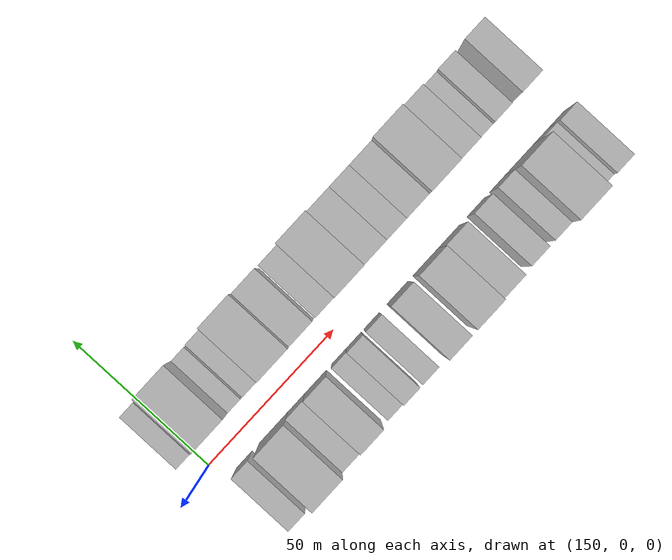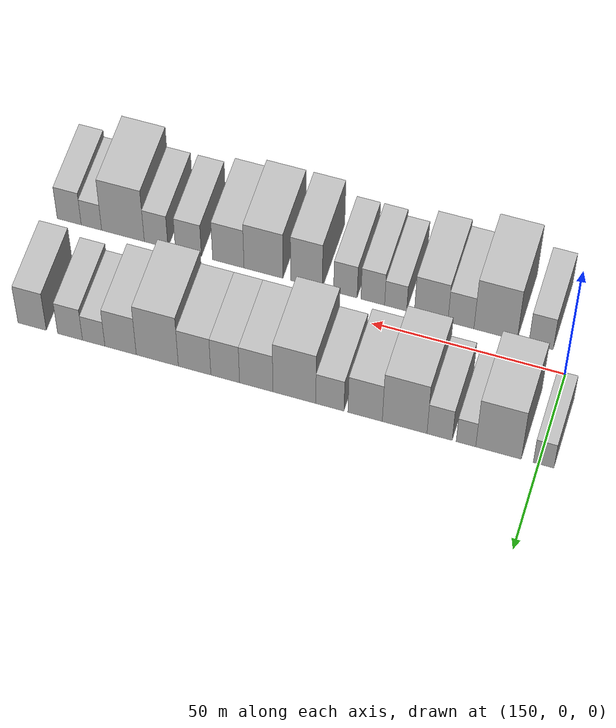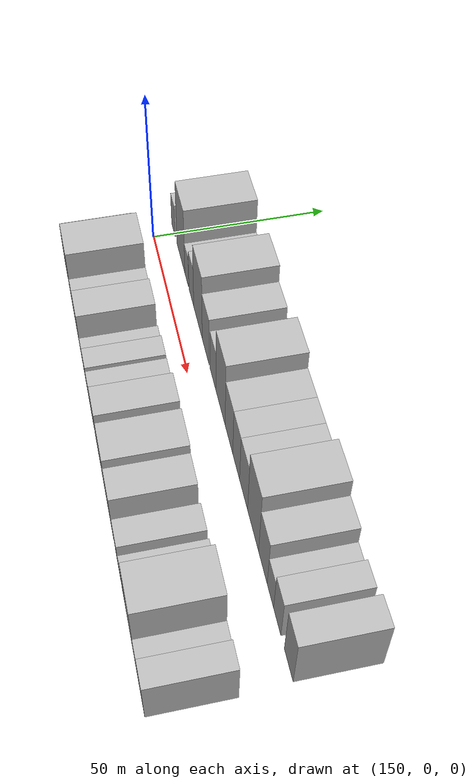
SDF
<sdf version="1.6">
 <world name="default">
  <model name="building_14">
   <static>1</static>
   <pose>148.7279 16.0000 0 0.000000 0.000000 1.570796</pose>
   <link name="link">
    <pose>0 0 6.00 0 0 0</pose>
    <collision name="collision"><geometry><box><size>20.0000 5.2347 12.0000</size></box></geometry></collision>
    <visual name="visual">
     <cast_shadows>0</cast_shadows>
     <geometry><box><size>20.0000 5.2347 12.0000</size></box></geometry>
     <material>
      <script>
       <uri>model://HANNAS_wall/materials/scripts</uri>
       <uri>model://HANNAS_wall/materials/textures</uri>
       <name>vrc/HANNAS_wall</name>
      </script>
     </material>
    </visual>
   </link>
  </model>
  <model name="building_15">
   <static>1</static>
   <pose>160.1381 16.0000 0 0.000000 0.000000 1.570796</pose>
   <link name="link">
    <pose>0 0 12.00 0 0 0</pose>
    <collision name="collision"><geometry><box><size>20.0000 11.5856 24.0000</size></box></geometry></collision>
    <visual name="visual">
     <cast_shadows>0</cast_shadows>
     <geometry><box><size>20.0000 11.5856 24.0000</size></box></geometry>
     <material>
      <script>
       <uri>model://HANNAS_wall/materials/scripts</uri>
       <uri>model://HANNAS_wall/materials/textures</uri>
       <name>vrc/HANNAS_wall</name>
      </script>
     </material>
    </visual>
   </link>
  </model>
  <model name="building_16">
   <static>1</static>
   <pose>168.4143 16.0000 0 0.000000 0.000000 1.570796</pose>
   <link name="link">
    <pose>0 0 6.00 0 0 0</pose>
    <collision name="collision"><geometry><box><size>20.0000 4.9667 12.0000</size></box></geometry></collision>
    <visual name="visual">
     <cast_shadows>0</cast_shadows>
     <geometry><box><size>20.0000 4.9667 12.0000</size></box></geometry>
     <material>
      <script>
       <uri>model://HANNAS_wall/materials/scripts</uri>
       <uri>model://HANNAS_wall/materials/textures</uri>
       <name>vrc/HANNAS_wall</name>
      </script>
     </material>
    </visual>
   </link>
  </model>
  <model name="building_17">
   <static>1</static>
   <pose>175.1251 16.0000 0 0.000000 0.000000 1.570796</pose>
   <link name="link">
    <pose>0 0 7.50 0 0 0</pose>
    <collision name="collision"><geometry><box><size>20.0000 6.4549 15.0000</size></box></geometry></collision>
    <visual name="visual">
     <cast_shadows>0</cast_shadows>
     <geometry><box><size>20.0000 6.4549 15.0000</size></box></geometry>
     <material>
      <script>
       <uri>model://HANNAS_wall/materials/scripts</uri>
       <uri>model://HANNAS_wall/materials/textures</uri>
       <name>vrc/HANNAS_wall</name>
      </script>
     </material>
    </visual>
   </link>
  </model>
  <model name="building_18">
   <static>1</static>
   <pose>184.0758 16.0000 0 0.000000 0.000000 1.570796</pose>
   <link name="link">
    <pose>0 0 12.00 0 0 0</pose>
    <collision name="collision"><geometry><box><size>20.0000 11.4465 24.0000</size></box></geometry></collision>
    <visual name="visual">
     <cast_shadows>0</cast_shadows>
     <geometry><box><size>20.0000 11.4465 24.0000</size></box></geometry>
     <material>
      <script>
       <uri>model://HANNAS_wall/materials/scripts</uri>
       <uri>model://HANNAS_wall/materials/textures</uri>
       <name>vrc/HANNAS_wall</name>
      </script>
     </material>
    </visual>
   </link>
  </model>
  <model name="building_19">
   <static>1</static>
   <pose>194.2236 16.0000 0 0.000000 0.000000 1.570796</pose>
   <link name="link">
    <pose>0 0 9.00 0 0 0</pose>
    <collision name="collision"><geometry><box><size>20.0000 8.8491 18.0000</size></box></geometry></collision>
    <visual name="visual">
     <cast_shadows>0</cast_shadows>
     <geometry><box><size>20.0000 8.8491 18.0000</size></box></geometry>
     <material>
      <script>
       <uri>model://HANNAS_wall/materials/scripts</uri>
       <uri>model://HANNAS_wall/materials/textures</uri>
       <name>vrc/HANNAS_wall</name>
      </script>
     </material>
    </visual>
   </link>
  </model>
  <model name="building_20">
   <static>1</static>
   <pose>203.2974 16.0000 0 0.000000 0.000000 1.570796</pose>
   <link name="link">
    <pose>0 0 7.50 0 0 0</pose>
    <collision name="collision"><geometry><box><size>20.0000 7.2986 15.0000</size></box></geometry></collision>
    <visual name="visual">
     <cast_shadows>0</cast_shadows>
     <geometry><box><size>20.0000 7.2986 15.0000</size></box></geometry>
     <material>
      <script>
       <uri>model://HANNAS_wall/materials/scripts</uri>
       <uri>model://HANNAS_wall/materials/textures</uri>
       <name>vrc/HANNAS_wall</name>
      </script>
     </material>
    </visual>
   </link>
  </model>
  <model name="building_21">
   <static>1</static>
   <pose>212.4936 16.0000 0 0.000000 0.000000 1.570796</pose>
   <link name="link">
    <pose>0 0 12.00 0 0 0</pose>
    <collision name="collision"><geometry><box><size>20.0000 11.0938 24.0000</size></box></geometry></collision>
    <visual name="visual">
     <cast_shadows>0</cast_shadows>
     <geometry><box><size>20.0000 11.0938 24.0000</size></box></geometry>
     <material>
      <script>
       <uri>model://HANNAS_wall/materials/scripts</uri>
       <uri>model://HANNAS_wall/materials/textures</uri>
       <name>vrc/HANNAS_wall</name>
      </script>
     </material>
    </visual>
   </link>
  </model>
  <model name="building_22">
   <static>1</static>
   <pose>222.3865 16.0000 0 0.000000 0.000000 1.570796</pose>
   <link name="link">
    <pose>0 0 9.00 0 0 0</pose>
    <collision name="collision"><geometry><box><size>20.0000 8.6919 18.0000</size></box></geometry></collision>
    <visual name="visual">
     <cast_shadows>0</cast_shadows>
     <geometry><box><size>20.0000 8.6919 18.0000</size></box></geometry>
     <material>
      <script>
       <uri>model://HANNAS_wall/materials/scripts</uri>
       <uri>model://HANNAS_wall/materials/textures</uri>
       <name>vrc/HANNAS_wall</name>
      </script>
     </material>
    </visual>
   </link>
  </model>
  <model name="building_23">
   <static>1</static>
   <pose>230.4803 16.0000 0 0.000000 0.000000 1.570796</pose>
   <link name="link">
    <pose>0 0 9.00 0 0 0</pose>
    <collision name="collision"><geometry><box><size>20.0000 7.4958 18.0000</size></box></geometry></collision>
    <visual name="visual">
     <cast_shadows>0</cast_shadows>
     <geometry><box><size>20.0000 7.4958 18.0000</size></box></geometry>
     <material>
      <script>
       <uri>model://HANNAS_wall/materials/scripts</uri>
       <uri>model://HANNAS_wall/materials/textures</uri>
       <name>vrc/HANNAS_wall</name>
      </script>
     </material>
    </visual>
   </link>
  </model>
  <model name="building_24">
   <static>1</static>
   <pose>238.4895 16.0000 0 0.000000 0.000000 1.570796</pose>
   <link name="link">
    <pose>0 0 9.00 0 0 0</pose>
    <collision name="collision"><geometry><box><size>20.0000 8.5227 18.0000</size></box></geometry></collision>
    <visual name="visual">
     <cast_shadows>0</cast_shadows>
     <geometry><box><size>20.0000 8.5227 18.0000</size></box></geometry>
     <material>
      <script>
       <uri>model://HANNAS_wall/materials/scripts</uri>
       <uri>model://HANNAS_wall/materials/textures</uri>
       <name>vrc/HANNAS_wall</name>
      </script>
     </material>
    </visual>
   </link>
  </model>
  <model name="building_25">
   <static>1</static>
   <pose>248.2883 16.0000 0 0.000000 0.000000 1.570796</pose>
   <link name="link">
    <pose>0 0 12.00 0 0 0</pose>
    <collision name="collision"><geometry><box><size>20.0000 11.0749 24.0000</size></box></geometry></collision>
    <visual name="visual">
     <cast_shadows>0</cast_shadows>
     <geometry><box><size>20.0000 11.0749 24.0000</size></box></geometry>
     <material>
      <script>
       <uri>model://HANNAS_wall/materials/scripts</uri>
       <uri>model://HANNAS_wall/materials/textures</uri>
       <name>vrc/HANNAS_wall</name>
      </script>
     </material>
    </visual>
   </link>
  </model>
  <model name="building_26">
   <static>1</static>
   <pose>257.9700 16.0000 0 0.000000 0.000000 1.570796</pose>
   <link name="link">
    <pose>0 0 9.00 0 0 0</pose>
    <collision name="collision"><geometry><box><size>20.0000 8.2885 18.0000</size></box></geometry></collision>
    <visual name="visual">
     <cast_shadows>0</cast_shadows>
     <geometry><box><size>20.0000 8.2885 18.0000</size></box></geometry>
     <material>
      <script>
       <uri>model://HANNAS_wall/materials/scripts</uri>
       <uri>model://HANNAS_wall/materials/textures</uri>
       <name>vrc/HANNAS_wall</name>
      </script>
     </material>
    </visual>
   </link>
  </model>
  <model name="building_27">
   <static>1</static>
   <pose>265.0842 16.0000 0 0.000000 0.000000 1.570796</pose>
   <link name="link">
    <pose>0 0 6.00 0 0 0</pose>
    <collision name="collision"><geometry><box><size>20.0000 5.9399 12.0000</size></box></geometry></collision>
    <visual name="visual">
     <cast_shadows>0</cast_shadows>
     <geometry><box><size>20.0000 5.9399 12.0000</size></box></geometry>
     <material>
      <script>
       <uri>model://HANNAS_wall/materials/scripts</uri>
       <uri>model://HANNAS_wall/materials/textures</uri>
       <name>vrc/HANNAS_wall</name>
      </script>
     </material>
    </visual>
   </link>
  </model>
  <model name="building_28">
   <static>1</static>
   <pose>271.3582 16.0000 0 0.000000 0.000000 1.570796</pose>
   <link name="link">
    <pose>0 0 7.50 0 0 0</pose>
    <collision name="collision"><geometry><box><size>20.0000 6.6079 15.0000</size></box></geometry></collision>
    <visual name="visual">
     <cast_shadows>0</cast_shadows>
     <geometry><box><size>20.0000 6.6079 15.0000</size></box></geometry>
     <material>
      <script>
       <uri>model://HANNAS_wall/materials/scripts</uri>
       <uri>model://HANNAS_wall/materials/textures</uri>
       <name>vrc/HANNAS_wall</name>
      </script>
     </material>
    </visual>
   </link>
  </model>
  <model name="building_29">
   <static>1</static>
   <pose>281.4448 16.0000 0 0.000000 0.000000 1.570796</pose>
   <link name="link">
    <pose>0 0 9.00 0 0 0</pose>
    <collision name="collision"><geometry><box><size>20.0000 7.5653 18.0000</size></box></geometry></collision>
    <visual name="visual">
     <cast_shadows>0</cast_shadows>
     <geometry><box><size>20.0000 7.5653 18.0000</size></box></geometry>
     <material>
      <script>
       <uri>model://HANNAS_wall/materials/scripts</uri>
       <uri>model://HANNAS_wall/materials/textures</uri>
       <name>vrc/HANNAS_wall</name>
      </script>
     </material>
    </visual>
   </link>
  </model>
  <model name="building_45">
   <static>1</static>
   <pose>157.7307 -16.0000 0 0.000000 0.000000 1.570796</pose>
   <link name="link">
    <pose>0 0 7.50 0 0 0</pose>
    <collision name="collision"><geometry><box><size>20.0000 6.3008 15.0000</size></box></geometry></collision>
    <visual name="visual">
     <cast_shadows>0</cast_shadows>
     <geometry><box><size>20.0000 6.3008 15.0000</size></box></geometry>
     <material>
      <script>
       <uri>model://HANNAS_wall/materials/scripts</uri>
       <uri>model://HANNAS_wall/materials/textures</uri>
       <name>vrc/HANNAS_wall</name>
      </script>
     </material>
    </visual>
   </link>
  </model>
  <model name="building_46">
   <static>1</static>
   <pose>169.5088 -16.0000 0 0.000000 0.000000 1.570796</pose>
   <link name="link">
    <pose>0 0 12.00 0 0 0</pose>
    <collision name="collision"><geometry><box><size>20.0000 11.2554 24.0000</size></box></geometry></collision>
    <visual name="visual">
     <cast_shadows>0</cast_shadows>
     <geometry><box><size>20.0000 11.2554 24.0000</size></box></geometry>
     <material>
      <script>
       <uri>model://HANNAS_wall/materials/scripts</uri>
       <uri>model://HANNAS_wall/materials/textures</uri>
       <name>vrc/HANNAS_wall</name>
      </script>
     </material>
    </visual>
   </link>
  </model>
  <model name="building_47">
   <static>1</static>
   <pose>178.5272 -16.0000 0 0.000000 0.000000 1.570796</pose>
   <link name="link">
    <pose>0 0 7.50 0 0 0</pose>
    <collision name="collision"><geometry><box><size>20.0000 6.7813 15.0000</size></box></geometry></collision>
    <visual name="visual">
     <cast_shadows>0</cast_shadows>
     <geometry><box><size>20.0000 6.7813 15.0000</size></box></geometry>
     <material>
      <script>
       <uri>model://HANNAS_wall/materials/scripts</uri>
       <uri>model://HANNAS_wall/materials/textures</uri>
       <name>vrc/HANNAS_wall</name>
      </script>
     </material>
    </visual>
   </link>
  </model>
  <model name="building_48">
   <static>1</static>
   <pose>186.3066 -16.0000 0 0.000000 0.000000 1.570796</pose>
   <link name="link">
    <pose>0 0 9.00 0 0 0</pose>
    <collision name="collision"><geometry><box><size>20.0000 8.7774 18.0000</size></box></geometry></collision>
    <visual name="visual">
     <cast_shadows>0</cast_shadows>
     <geometry><box><size>20.0000 8.7774 18.0000</size></box></geometry>
     <material>
      <script>
       <uri>model://HANNAS_wall/materials/scripts</uri>
       <uri>model://HANNAS_wall/materials/textures</uri>
       <name>vrc/HANNAS_wall</name>
      </script>
     </material>
    </visual>
   </link>
  </model>
  <model name="building_49">
   <static>1</static>
   <pose>195.5950 -16.0000 0 0.000000 0.000000 1.570796</pose>
   <link name="link">
    <pose>0 0 6.00 0 0 0</pose>
    <collision name="collision"><geometry><box><size>20.0000 5.7994 12.0000</size></box></geometry></collision>
    <visual name="visual">
     <cast_shadows>0</cast_shadows>
     <geometry><box><size>20.0000 5.7994 12.0000</size></box></geometry>
     <material>
      <script>
       <uri>model://HANNAS_wall/materials/scripts</uri>
       <uri>model://HANNAS_wall/materials/textures</uri>
       <name>vrc/HANNAS_wall</name>
      </script>
     </material>
    </visual>
   </link>
  </model>
  <model name="building_50">
   <static>1</static>
   <pose>201.6093 -16.0000 0 0.000000 0.000000 1.570796</pose>
   <link name="link">
    <pose>0 0 7.50 0 0 0</pose>
    <collision name="collision"><geometry><box><size>20.0000 6.2292 15.0000</size></box></geometry></collision>
    <visual name="visual">
     <cast_shadows>0</cast_shadows>
     <geometry><box><size>20.0000 6.2292 15.0000</size></box></geometry>
     <material>
      <script>
       <uri>model://HANNAS_wall/materials/scripts</uri>
       <uri>model://HANNAS_wall/materials/textures</uri>
       <name>vrc/HANNAS_wall</name>
      </script>
     </material>
    </visual>
   </link>
  </model>
  <model name="building_51">
   <static>1</static>
   <pose>208.8307 -16.0000 0 0.000000 0.000000 1.570796</pose>
   <link name="link">
    <pose>0 0 7.50 0 0 0</pose>
    <collision name="collision"><geometry><box><size>20.0000 6.2136 15.0000</size></box></geometry></collision>
    <visual name="visual">
     <cast_shadows>0</cast_shadows>
     <geometry><box><size>20.0000 6.2136 15.0000</size></box></geometry>
     <material>
      <script>
       <uri>model://HANNAS_wall/materials/scripts</uri>
       <uri>model://HANNAS_wall/materials/textures</uri>
       <name>vrc/HANNAS_wall</name>
      </script>
     </material>
    </visual>
   </link>
  </model>
  <model name="building_52">
   <static>1</static>
   <pose>219.1496 -16.0000 0 0.000000 0.000000 1.570796</pose>
   <link name="link">
    <pose>0 0 10.50 0 0 0</pose>
    <collision name="collision"><geometry><box><size>20.0000 8.4243 21.0000</size></box></geometry></collision>
    <visual name="visual">
     <cast_shadows>0</cast_shadows>
     <geometry><box><size>20.0000 8.4243 21.0000</size></box></geometry>
     <material>
      <script>
       <uri>model://HANNAS_wall/materials/scripts</uri>
       <uri>model://HANNAS_wall/materials/textures</uri>
       <name>vrc/HANNAS_wall</name>
      </script>
     </material>
    </visual>
   </link>
  </model>
  <model name="building_53">
   <static>1</static>
   <pose>230.5541 -16.0000 0 0.000000 0.000000 1.570796</pose>
   <link name="link">
    <pose>0 0 10.50 0 0 0</pose>
    <collision name="collision"><geometry><box><size>20.0000 10.3846 21.0000</size></box></geometry></collision>
    <visual name="visual">
     <cast_shadows>0</cast_shadows>
     <geometry><box><size>20.0000 10.3846 21.0000</size></box></geometry>
     <material>
      <script>
       <uri>model://HANNAS_wall/materials/scripts</uri>
       <uri>model://HANNAS_wall/materials/textures</uri>
       <name>vrc/HANNAS_wall</name>
      </script>
     </material>
    </visual>
   </link>
  </model>
  <model name="building_54">
   <static>1</static>
   <pose>239.9381 -16.0000 0 0.000000 0.000000 1.570796</pose>
   <link name="link">
    <pose>0 0 9.00 0 0 0</pose>
    <collision name="collision"><geometry><box><size>20.0000 8.3835 18.0000</size></box></geometry></collision>
    <visual name="visual">
     <cast_shadows>0</cast_shadows>
     <geometry><box><size>20.0000 8.3835 18.0000</size></box></geometry>
     <material>
      <script>
       <uri>model://HANNAS_wall/materials/scripts</uri>
       <uri>model://HANNAS_wall/materials/textures</uri>
       <name>vrc/HANNAS_wall</name>
      </script>
     </material>
    </visual>
   </link>
  </model>
  <model name="building_55">
   <static>1</static>
   <pose>250.6253 -16.0000 0 0.000000 0.000000 1.570796</pose>
   <link name="link">
    <pose>0 0 7.50 0 0 0</pose>
    <collision name="collision"><geometry><box><size>20.0000 6.9909 15.0000</size></box></geometry></collision>
    <visual name="visual">
     <cast_shadows>0</cast_shadows>
     <geometry><box><size>20.0000 6.9909 15.0000</size></box></geometry>
     <material>
      <script>
       <uri>model://HANNAS_wall/materials/scripts</uri>
       <uri>model://HANNAS_wall/materials/textures</uri>
       <name>vrc/HANNAS_wall</name>
      </script>
     </material>
    </visual>
   </link>
  </model>
  <model name="building_56">
   <static>1</static>
   <pose>259.3137 -16.0000 0 0.000000 0.000000 1.570796</pose>
   <link name="link">
    <pose>0 0 7.50 0 0 0</pose>
    <collision name="collision"><geometry><box><size>20.0000 6.3858 15.0000</size></box></geometry></collision>
    <visual name="visual">
     <cast_shadows>0</cast_shadows>
     <geometry><box><size>20.0000 6.3858 15.0000</size></box></geometry>
     <material>
      <script>
       <uri>model://HANNAS_wall/materials/scripts</uri>
       <uri>model://HANNAS_wall/materials/textures</uri>
       <name>vrc/HANNAS_wall</name>
      </script>
     </material>
    </visual>
   </link>
  </model>
  <model name="building_57">
   <static>1</static>
   <pose>268.2804 -16.0000 0 0.000000 0.000000 1.570796</pose>
   <link name="link">
    <pose>0 0 12.00 0 0 0</pose>
    <collision name="collision"><geometry><box><size>20.0000 11.5476 24.0000</size></box></geometry></collision>
    <visual name="visual">
     <cast_shadows>0</cast_shadows>
     <geometry><box><size>20.0000 11.5476 24.0000</size></box></geometry>
     <material>
      <script>
       <uri>model://HANNAS_wall/materials/scripts</uri>
       <uri>model://HANNAS_wall/materials/textures</uri>
       <name>vrc/HANNAS_wall</name>
      </script>
     </material>
    </visual>
   </link>
  </model>
  <model name="building_58">
   <static>1</static>
   <pose>276.8312 -16.0000 0 0.000000 0.000000 1.570796</pose>
   <link name="link">
    <pose>0 0 6.00 0 0 0</pose>
    <collision name="collision"><geometry><box><size>20.0000 5.5540 12.0000</size></box></geometry></collision>
    <visual name="visual">
     <cast_shadows>0</cast_shadows>
     <geometry><box><size>20.0000 5.5540 12.0000</size></box></geometry>
     <material>
      <script>
       <uri>model://HANNAS_wall/materials/scripts</uri>
       <uri>model://HANNAS_wall/materials/textures</uri>
       <name>vrc/HANNAS_wall</name>
      </script>
     </material>
    </visual>
   </link>
  </model>
  <model name="building_59">
   <static>1</static>
   <pose>282.8715 -16.0000 0 0.000000 0.000000 1.570796</pose>
   <link name="link">
    <pose>0 0 7.50 0 0 0</pose>
    <collision name="collision"><geometry><box><size>20.0000 6.5266 15.0000</size></box></geometry></collision>
    <visual name="visual">
     <cast_shadows>0</cast_shadows>
     <geometry><box><size>20.0000 6.5266 15.0000</size></box></geometry>
     <material>
      <script>
       <uri>model://HANNAS_wall/materials/scripts</uri>
       <uri>model://HANNAS_wall/materials/textures</uri>
       <name>vrc/HANNAS_wall</name>
      </script>
     </material>
    </visual>
   </link>
  </model>
 </world>
</sdf>
